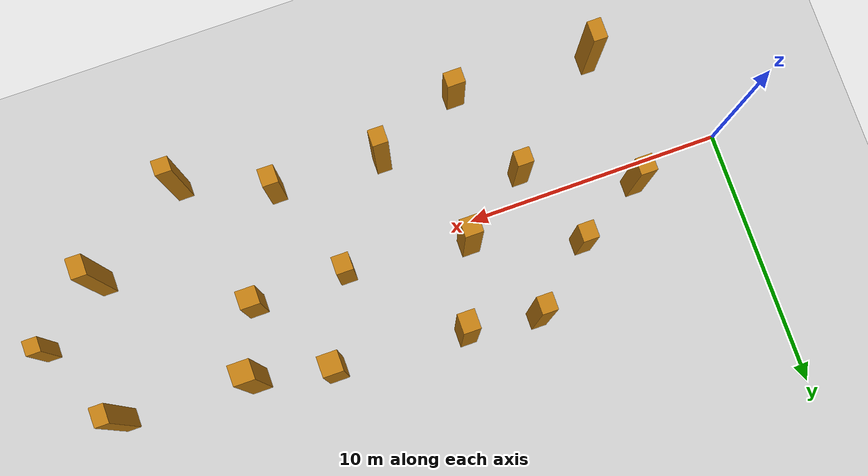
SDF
<sdf version="1.7">
 <world name="default">
  <light name="sun" type="directional">
   <pose>0 0 10 0 -0 0</pose>
   <diffuse>0.8 0.8 0.8 1</diffuse>
   <specular>0.2 0.2 0.2 1</specular>
   <attenuation>
    <range>1000</range>
    <constant>0.9</constant>
    <linear>0.01</linear>
    <quadratic>0.001</quadratic>
   </attenuation>
   <direction>-0.5 0.1 -0.9</direction>
   <spot><inner_angle>0</inner_angle><outer_angle>0</outer_angle><falloff>0</falloff></spot>
  </light>
  <model name="ground_plane">
   <static>1</static>
   <link name="link">
    <collision name="collision">
     <geometry><plane><normal>0 0 1</normal><size>100 100</size></plane></geometry>
     <surface>
      <contact><collide_bitmask>65535</collide_bitmask></contact>
      <friction><ode><mu>100</mu><mu2>50</mu2></ode></friction>
     </surface>
    </collision>
    <visual name="visual">
     <cast_shadows>0</cast_shadows>
     <geometry><plane><normal>0 0 1</normal><size>100 100</size></plane></geometry>
     <material>
      <script><uri>file://media/materials/scripts/gazebo.material</uri><name>Gazebo/Grey</name></script>
     </material>
    </visual>
   </link>
  </model>
  <gravity>0 0 -9.8</gravity>
  <magnetic_field>6e-06 2.3e-05 -4.2e-05</magnetic_field>
  <atmosphere type="adiabatic"/>
  <physics type="ode">
   <max_step_size>0.001</max_step_size>
   <real_time_factor>1</real_time_factor>
   <real_time_update_rate>1000</real_time_update_rate>
  </physics>
  <scene><ambient>0.4 0.4 0.4 1</ambient><background>0.7 0.7 0.7 1</background><shadows>1</shadows></scene>
  <spherical_coordinates>
   <surface_model>EARTH_WGS84</surface_model>
   <latitude_deg>0</latitude_deg>
   <longitude_deg>0</longitude_deg>
   <elevation>0</elevation>
   <heading_deg>0</heading_deg>
  </spherical_coordinates>
  <plugin name="gazebo_octomap" filename="libBuildOctomapPlugin.so"/>
  <model name="model0">
   <link name="link">
    <inertial>
     <mass>1</mass>
     <inertia>
      <ixx>0.166667</ixx>
      <ixy>0</ixy>
      <ixz>0</ixz>
      <iyy>0.166667</iyy>
      <iyz>0</iyz>
      <izz>0.166667</izz>
     </inertia>
    </inertial>
    <visual name="visual">
     <geometry><box><size>0.6402625426062548 0.7321620745551295 5.932854383173112</size></box></geometry>
     <material>
      <script><name>Gazebo/Grey</name><uri>file://media/materials/scripts/gazebo.material</uri></script>
      <shader type="pixel"><normal_map>__default__</normal_map></shader>
      <ambient>0.757 0.49 0.067 1</ambient>
      <diffuse>0.7 0.7 0.7 1</diffuse>
      <specular>0.01 0.01 0.01 1</specular>
      <emissive>0 0 0 1</emissive>
     </material>
    </visual>
    <collision name="collision">
     <geometry><box><size>0.6402625426062548 0.7321620745551295 5.932854383173112</size></box></geometry>
     <surface>
      <friction>
       <ode><mu>1</mu><mu2>1</mu2><fdir1>0 0 0</fdir1><slip1>0</slip1><slip2>0</slip2></ode>
       <torsional>
        <coefficient>1</coefficient>
        <patch_radius>0</patch_radius>
        <surface_radius>0</surface_radius>
        <use_patch_radius>1</use_patch_radius>
        <ode><slip>0</slip></ode>
       </torsional>
      </friction>
      <bounce><restitution_coefficient>0</restitution_coefficient><threshold>1e+06</threshold></bounce>
      <contact>
       <collide_without_contact>0</collide_without_contact>
       <collide_without_contact_bitmask>1</collide_without_contact_bitmask>
       <collide_bitmask>1</collide_bitmask>
       <ode>
        <soft_cfm>0</soft_cfm>
        <soft_erp>0.2</soft_erp>
        <kp>1e+13</kp>
        <kd>1</kd>
        <max_vel>0.01</max_vel>
        <min_depth>0</min_depth>
       </ode>
       <bullet>
        <split_impulse>1</split_impulse>
        <split_impulse_penetration_threshold>-0.01</split_impulse_penetration_threshold>
        <soft_cfm>0</soft_cfm>
        <soft_erp>0.2</soft_erp>
        <kp>1e+13</kp>
        <kd>1</kd>
       </bullet>
      </contact>
     </surface>
    </collision>
   </link>
   <static>0</static>
   <pose>11.662517056378999 4.077666107304665 2.966427191586556 0.0 0.0 0.0</pose>
  </model>
  <model name="model1">
   <link name="link">
    <inertial>
     <mass>1</mass>
     <inertia>
      <ixx>0.166667</ixx>
      <ixy>0</ixy>
      <ixz>0</ixz>
      <iyy>0.166667</iyy>
      <iyz>0</iyz>
      <izz>0.166667</izz>
     </inertia>
    </inertial>
    <visual name="visual">
     <geometry><box><size>0.7926041829274035 0.7601663109231412 5.770006397818017</size></box></geometry>
     <material>
      <script><name>Gazebo/Grey</name><uri>file://media/materials/scripts/gazebo.material</uri></script>
      <shader type="pixel"><normal_map>__default__</normal_map></shader>
      <ambient>0.757 0.49 0.067 1</ambient>
      <diffuse>0.7 0.7 0.7 1</diffuse>
      <specular>0.01 0.01 0.01 1</specular>
      <emissive>0 0 0 1</emissive>
     </material>
    </visual>
    <collision name="collision">
     <geometry><box><size>0.7926041829274035 0.7601663109231412 5.770006397818017</size></box></geometry>
     <surface>
      <friction>
       <ode><mu>1</mu><mu2>1</mu2><fdir1>0 0 0</fdir1><slip1>0</slip1><slip2>0</slip2></ode>
       <torsional>
        <coefficient>1</coefficient>
        <patch_radius>0</patch_radius>
        <surface_radius>0</surface_radius>
        <use_patch_radius>1</use_patch_radius>
        <ode><slip>0</slip></ode>
       </torsional>
      </friction>
      <bounce><restitution_coefficient>0</restitution_coefficient><threshold>1e+06</threshold></bounce>
      <contact>
       <collide_without_contact>0</collide_without_contact>
       <collide_without_contact_bitmask>1</collide_without_contact_bitmask>
       <collide_bitmask>1</collide_bitmask>
       <ode>
        <soft_cfm>0</soft_cfm>
        <soft_erp>0.2</soft_erp>
        <kp>1e+13</kp>
        <kd>1</kd>
        <max_vel>0.01</max_vel>
        <min_depth>0</min_depth>
       </ode>
       <bullet>
        <split_impulse>1</split_impulse>
        <split_impulse_penetration_threshold>-0.01</split_impulse_penetration_threshold>
        <soft_cfm>0</soft_cfm>
        <soft_erp>0.2</soft_erp>
        <kp>1e+13</kp>
        <kd>1</kd>
       </bullet>
      </contact>
     </surface>
    </collision>
   </link>
   <static>0</static>
   <pose>19.596530235896566 3.118956362524763 2.8850031989090086 0.0 0.0 0.0</pose>
  </model>
  <model name="model2">
   <link name="link">
    <inertial>
     <mass>1</mass>
     <inertia>
      <ixx>0.166667</ixx>
      <ixy>0</ixy>
      <ixz>0</ixz>
      <iyy>0.166667</iyy>
      <iyz>0</iyz>
      <izz>0.166667</izz>
     </inertia>
    </inertial>
    <visual name="visual">
     <geometry><box><size>0.7585043041476112 0.6993387628271526 3.2267401947062844</size></box></geometry>
     <material>
      <script><name>Gazebo/Grey</name><uri>file://media/materials/scripts/gazebo.material</uri></script>
      <shader type="pixel"><normal_map>__default__</normal_map></shader>
      <ambient>0.757 0.49 0.067 1</ambient>
      <diffuse>0.7 0.7 0.7 1</diffuse>
      <specular>0.01 0.01 0.01 1</specular>
      <emissive>0 0 0 1</emissive>
     </material>
    </visual>
    <collision name="collision">
     <geometry><box><size>0.7585043041476112 0.6993387628271526 3.2267401947062844</size></box></geometry>
     <surface>
      <friction>
       <ode><mu>1</mu><mu2>1</mu2><fdir1>0 0 0</fdir1><slip1>0</slip1><slip2>0</slip2></ode>
       <torsional>
        <coefficient>1</coefficient>
        <patch_radius>0</patch_radius>
        <surface_radius>0</surface_radius>
        <use_patch_radius>1</use_patch_radius>
        <ode><slip>0</slip></ode>
       </torsional>
      </friction>
      <bounce><restitution_coefficient>0</restitution_coefficient><threshold>1e+06</threshold></bounce>
      <contact>
       <collide_without_contact>0</collide_without_contact>
       <collide_without_contact_bitmask>1</collide_without_contact_bitmask>
       <collide_bitmask>1</collide_bitmask>
       <ode>
        <soft_cfm>0</soft_cfm>
        <soft_erp>0.2</soft_erp>
        <kp>1e+13</kp>
        <kd>1</kd>
        <max_vel>0.01</max_vel>
        <min_depth>0</min_depth>
       </ode>
       <bullet>
        <split_impulse>1</split_impulse>
        <split_impulse_penetration_threshold>-0.01</split_impulse_penetration_threshold>
        <soft_cfm>0</soft_cfm>
        <soft_erp>0.2</soft_erp>
        <kp>1e+13</kp>
        <kd>1</kd>
       </bullet>
      </contact>
     </surface>
    </collision>
   </link>
   <static>0</static>
   <pose>18.795943505186177 0.3847671600215188 1.6133700973531422 0.0 0.0 0.0</pose>
  </model>
  <model name="model3">
   <link name="link">
    <inertial>
     <mass>1</mass>
     <inertia>
      <ixx>0.166667</ixx>
      <ixy>0</ixy>
      <ixz>0</ixz>
      <iyy>0.166667</iyy>
      <iyz>0</iyz>
      <izz>0.166667</izz>
     </inertia>
    </inertial>
    <visual name="visual">
     <geometry><box><size>0.6168773900200244 0.6721016739439598 3.523141033162217</size></box></geometry>
     <material>
      <script><name>Gazebo/Grey</name><uri>file://media/materials/scripts/gazebo.material</uri></script>
      <shader type="pixel"><normal_map>__default__</normal_map></shader>
      <ambient>0.757 0.49 0.067 1</ambient>
      <diffuse>0.7 0.7 0.7 1</diffuse>
      <specular>0.01 0.01 0.01 1</specular>
      <emissive>0 0 0 1</emissive>
     </material>
    </visual>
    <collision name="collision">
     <geometry><box><size>0.6168773900200244 0.6721016739439598 3.523141033162217</size></box></geometry>
     <surface>
      <friction>
       <ode><mu>1</mu><mu2>1</mu2><fdir1>0 0 0</fdir1><slip1>0</slip1><slip2>0</slip2></ode>
       <torsional>
        <coefficient>1</coefficient>
        <patch_radius>0</patch_radius>
        <surface_radius>0</surface_radius>
        <use_patch_radius>1</use_patch_radius>
        <ode><slip>0</slip></ode>
       </torsional>
      </friction>
      <bounce><restitution_coefficient>0</restitution_coefficient><threshold>1e+06</threshold></bounce>
      <contact>
       <collide_without_contact>0</collide_without_contact>
       <collide_without_contact_bitmask>1</collide_without_contact_bitmask>
       <collide_bitmask>1</collide_bitmask>
       <ode>
        <soft_cfm>0</soft_cfm>
        <soft_erp>0.2</soft_erp>
        <kp>1e+13</kp>
        <kd>1</kd>
        <max_vel>0.01</max_vel>
        <min_depth>0</min_depth>
       </ode>
       <bullet>
        <split_impulse>1</split_impulse>
        <split_impulse_penetration_threshold>-0.01</split_impulse_penetration_threshold>
        <soft_cfm>0</soft_cfm>
        <soft_erp>0.2</soft_erp>
        <kp>1e+13</kp>
        <kd>1</kd>
       </bullet>
      </contact>
     </surface>
    </collision>
   </link>
   <static>0</static>
   <pose>6.351225697917822 2.2384086742602625 1.7615705165811084 0.0 0.0 0.0</pose>
  </model>
  <model name="model4">
   <link name="link">
    <inertial>
     <mass>1</mass>
     <inertia>
      <ixx>0.166667</ixx>
      <ixy>0</ixy>
      <ixz>0</ixz>
      <iyy>0.166667</iyy>
      <iyz>0</iyz>
      <izz>0.166667</izz>
     </inertia>
    </inertial>
    <visual name="visual">
     <geometry><box><size>0.5875072831207581 0.6268048547813048 5.116063850576148</size></box></geometry>
     <material>
      <script><name>Gazebo/Grey</name><uri>file://media/materials/scripts/gazebo.material</uri></script>
      <shader type="pixel"><normal_map>__default__</normal_map></shader>
      <ambient>0.757 0.49 0.067 1</ambient>
      <diffuse>0.7 0.7 0.7 1</diffuse>
      <specular>0.01 0.01 0.01 1</specular>
      <emissive>0 0 0 1</emissive>
     </material>
    </visual>
    <collision name="collision">
     <geometry><box><size>0.5875072831207581 0.6268048547813048 5.116063850576148</size></box></geometry>
     <surface>
      <friction>
       <ode><mu>1</mu><mu2>1</mu2><fdir1>0 0 0</fdir1><slip1>0</slip1><slip2>0</slip2></ode>
       <torsional>
        <coefficient>1</coefficient>
        <patch_radius>0</patch_radius>
        <surface_radius>0</surface_radius>
        <use_patch_radius>1</use_patch_radius>
        <ode><slip>0</slip></ode>
       </torsional>
      </friction>
      <bounce><restitution_coefficient>0</restitution_coefficient><threshold>1e+06</threshold></bounce>
      <contact>
       <collide_without_contact>0</collide_without_contact>
       <collide_without_contact_bitmask>1</collide_without_contact_bitmask>
       <collide_bitmask>1</collide_bitmask>
       <ode>
        <soft_cfm>0</soft_cfm>
        <soft_erp>0.2</soft_erp>
        <kp>1e+13</kp>
        <kd>1</kd>
        <max_vel>0.01</max_vel>
        <min_depth>0</min_depth>
       </ode>
       <bullet>
        <split_impulse>1</split_impulse>
        <split_impulse_penetration_threshold>-0.01</split_impulse_penetration_threshold>
        <soft_cfm>0</soft_cfm>
        <soft_erp>0.2</soft_erp>
        <kp>1e+13</kp>
        <kd>1</kd>
       </bullet>
      </contact>
     </surface>
    </collision>
   </link>
   <static>0</static>
   <pose>12.468142239162923 -3.2642082276868445 2.558031925288074 0.0 0.0 0.0</pose>
  </model>
  <model name="model5">
   <link name="link">
    <inertial>
     <mass>1</mass>
     <inertia>
      <ixx>0.166667</ixx>
      <ixy>0</ixy>
      <ixz>0</ixz>
      <iyy>0.166667</iyy>
      <iyz>0</iyz>
      <izz>0.166667</izz>
     </inertia>
    </inertial>
    <visual name="visual">
     <geometry><box><size>0.6562938639500012 0.6783752463258594 3.314398212564381</size></box></geometry>
     <material>
      <script><name>Gazebo/Grey</name><uri>file://media/materials/scripts/gazebo.material</uri></script>
      <shader type="pixel"><normal_map>__default__</normal_map></shader>
      <ambient>0.757 0.49 0.067 1</ambient>
      <diffuse>0.7 0.7 0.7 1</diffuse>
      <specular>0.01 0.01 0.01 1</specular>
      <emissive>0 0 0 1</emissive>
     </material>
    </visual>
    <collision name="collision">
     <geometry><box><size>0.6562938639500012 0.6783752463258594 3.314398212564381</size></box></geometry>
     <surface>
      <friction>
       <ode><mu>1</mu><mu2>1</mu2><fdir1>0 0 0</fdir1><slip1>0</slip1><slip2>0</slip2></ode>
       <torsional>
        <coefficient>1</coefficient>
        <patch_radius>0</patch_radius>
        <surface_radius>0</surface_radius>
        <use_patch_radius>1</use_patch_radius>
        <ode><slip>0</slip></ode>
       </torsional>
      </friction>
      <bounce><restitution_coefficient>0</restitution_coefficient><threshold>1e+06</threshold></bounce>
      <contact>
       <collide_without_contact>0</collide_without_contact>
       <collide_without_contact_bitmask>1</collide_without_contact_bitmask>
       <collide_bitmask>1</collide_bitmask>
       <ode>
        <soft_cfm>0</soft_cfm>
        <soft_erp>0.2</soft_erp>
        <kp>1e+13</kp>
        <kd>1</kd>
        <max_vel>0.01</max_vel>
        <min_depth>0</min_depth>
       </ode>
       <bullet>
        <split_impulse>1</split_impulse>
        <split_impulse_penetration_threshold>-0.01</split_impulse_penetration_threshold>
        <soft_cfm>0</soft_cfm>
        <soft_erp>0.2</soft_erp>
        <kp>1e+13</kp>
        <kd>1</kd>
       </bullet>
      </contact>
     </surface>
    </collision>
   </link>
   <static>0</static>
   <pose>15.158822422582917 0.3528990592626613 1.6571991062821905 0.0 0.0 0.0</pose>
  </model>
  <model name="model6">
   <link name="link">
    <inertial>
     <mass>1</mass>
     <inertia>
      <ixx>0.166667</ixx>
      <ixy>0</ixy>
      <ixz>0</ixz>
      <iyy>0.166667</iyy>
      <iyz>0</iyz>
      <izz>0.166667</izz>
     </inertia>
    </inertial>
    <visual name="visual">
     <geometry><box><size>0.6927449384870178 0.6814920330369663 5.105653404831353</size></box></geometry>
     <material>
      <script><name>Gazebo/Grey</name><uri>file://media/materials/scripts/gazebo.material</uri></script>
      <shader type="pixel"><normal_map>__default__</normal_map></shader>
      <ambient>0.757 0.49 0.067 1</ambient>
      <diffuse>0.7 0.7 0.7 1</diffuse>
      <specular>0.01 0.01 0.01 1</specular>
      <emissive>0 0 0 1</emissive>
     </material>
    </visual>
    <collision name="collision">
     <geometry><box><size>0.6927449384870178 0.6814920330369663 5.105653404831353</size></box></geometry>
     <surface>
      <friction>
       <ode><mu>1</mu><mu2>1</mu2><fdir1>0 0 0</fdir1><slip1>0</slip1><slip2>0</slip2></ode>
       <torsional>
        <coefficient>1</coefficient>
        <patch_radius>0</patch_radius>
        <surface_radius>0</surface_radius>
        <use_patch_radius>1</use_patch_radius>
        <ode><slip>0</slip></ode>
       </torsional>
      </friction>
      <bounce><restitution_coefficient>0</restitution_coefficient><threshold>1e+06</threshold></bounce>
      <contact>
       <collide_without_contact>0</collide_without_contact>
       <collide_without_contact_bitmask>1</collide_without_contact_bitmask>
       <collide_bitmask>1</collide_bitmask>
       <ode>
        <soft_cfm>0</soft_cfm>
        <soft_erp>0.2</soft_erp>
        <kp>1e+13</kp>
        <kd>1</kd>
        <max_vel>0.01</max_vel>
        <min_depth>0</min_depth>
       </ode>
       <bullet>
        <split_impulse>1</split_impulse>
        <split_impulse_penetration_threshold>-0.01</split_impulse_penetration_threshold>
        <soft_cfm>0</soft_cfm>
        <soft_erp>0.2</soft_erp>
        <kp>1e+13</kp>
        <kd>1</kd>
       </bullet>
      </contact>
     </surface>
    </collision>
   </link>
   <static>0</static>
   <pose>10.406460404937729 0.8645016786296651 2.5528267024156763 0.0 0.0 0.0</pose>
  </model>
  <model name="model7">
   <link name="link">
    <inertial>
     <mass>1</mass>
     <inertia>
      <ixx>0.166667</ixx>
      <ixy>0</ixy>
      <ixz>0</ixz>
      <iyy>0.166667</iyy>
      <iyz>0</iyz>
      <izz>0.166667</izz>
     </inertia>
    </inertial>
    <visual name="visual">
     <geometry><box><size>0.5847253934455834 0.7794530934289549 5.246730457987969</size></box></geometry>
     <material>
      <script><name>Gazebo/Grey</name><uri>file://media/materials/scripts/gazebo.material</uri></script>
      <shader type="pixel"><normal_map>__default__</normal_map></shader>
      <ambient>0.757 0.49 0.067 1</ambient>
      <diffuse>0.7 0.7 0.7 1</diffuse>
      <specular>0.01 0.01 0.01 1</specular>
      <emissive>0 0 0 1</emissive>
     </material>
    </visual>
    <collision name="collision">
     <geometry><box><size>0.5847253934455834 0.7794530934289549 5.246730457987969</size></box></geometry>
     <surface>
      <friction>
       <ode><mu>1</mu><mu2>1</mu2><fdir1>0 0 0</fdir1><slip1>0</slip1><slip2>0</slip2></ode>
       <torsional>
        <coefficient>1</coefficient>
        <patch_radius>0</patch_radius>
        <surface_radius>0</surface_radius>
        <use_patch_radius>1</use_patch_radius>
        <ode><slip>0</slip></ode>
       </torsional>
      </friction>
      <bounce><restitution_coefficient>0</restitution_coefficient><threshold>1e+06</threshold></bounce>
      <contact>
       <collide_without_contact>0</collide_without_contact>
       <collide_without_contact_bitmask>1</collide_without_contact_bitmask>
       <collide_bitmask>1</collide_bitmask>
       <ode>
        <soft_cfm>0</soft_cfm>
        <soft_erp>0.2</soft_erp>
        <kp>1e+13</kp>
        <kd>1</kd>
        <max_vel>0.01</max_vel>
        <min_depth>0</min_depth>
       </ode>
       <bullet>
        <split_impulse>1</split_impulse>
        <split_impulse_penetration_threshold>-0.01</split_impulse_penetration_threshold>
        <soft_cfm>0</soft_cfm>
        <soft_erp>0.2</soft_erp>
        <kp>1e+13</kp>
        <kd>1</kd>
       </bullet>
      </contact>
     </surface>
    </collision>
   </link>
   <static>0</static>
   <pose>23.93201211782333 -2.3444732014074985 2.6233652289939844 0.0 0.0 0.0</pose>
  </model>
  <model name="model8">
   <link name="link">
    <inertial>
     <mass>1</mass>
     <inertia>
      <ixx>0.166667</ixx>
      <ixy>0</ixy>
      <ixz>0</ixz>
      <iyy>0.166667</iyy>
      <iyz>0</iyz>
      <izz>0.166667</izz>
     </inertia>
    </inertial>
    <visual name="visual">
     <geometry><box><size>0.5371616395851441 0.7303803672669974 5.682764004160392</size></box></geometry>
     <material>
      <script><name>Gazebo/Grey</name><uri>file://media/materials/scripts/gazebo.material</uri></script>
      <shader type="pixel"><normal_map>__default__</normal_map></shader>
      <ambient>0.757 0.49 0.067 1</ambient>
      <diffuse>0.7 0.7 0.7 1</diffuse>
      <specular>0.01 0.01 0.01 1</specular>
      <emissive>0 0 0 1</emissive>
     </material>
    </visual>
    <collision name="collision">
     <geometry><box><size>0.5371616395851441 0.7303803672669974 5.682764004160392</size></box></geometry>
     <surface>
      <friction>
       <ode><mu>1</mu><mu2>1</mu2><fdir1>0 0 0</fdir1><slip1>0</slip1><slip2>0</slip2></ode>
       <torsional>
        <coefficient>1</coefficient>
        <patch_radius>0</patch_radius>
        <surface_radius>0</surface_radius>
        <use_patch_radius>1</use_patch_radius>
        <ode><slip>0</slip></ode>
       </torsional>
      </friction>
      <bounce><restitution_coefficient>0</restitution_coefficient><threshold>1e+06</threshold></bounce>
      <contact>
       <collide_without_contact>0</collide_without_contact>
       <collide_without_contact_bitmask>1</collide_without_contact_bitmask>
       <collide_bitmask>1</collide_bitmask>
       <ode>
        <soft_cfm>0</soft_cfm>
        <soft_erp>0.2</soft_erp>
        <kp>1e+13</kp>
        <kd>1</kd>
        <max_vel>0.01</max_vel>
        <min_depth>0</min_depth>
       </ode>
       <bullet>
        <split_impulse>1</split_impulse>
        <split_impulse_penetration_threshold>-0.01</split_impulse_penetration_threshold>
        <soft_cfm>0</soft_cfm>
        <soft_erp>0.2</soft_erp>
        <kp>1e+13</kp>
        <kd>1</kd>
       </bullet>
      </contact>
     </surface>
    </collision>
   </link>
   <static>0</static>
   <pose>24.633394607752265 2.8876006394186486 2.841382002080196 0.0 0.0 0.0</pose>
  </model>
  <model name="model9">
   <link name="link">
    <inertial>
     <mass>1</mass>
     <inertia>
      <ixx>0.166667</ixx>
      <ixy>0</ixy>
      <ixz>0</ixz>
      <iyy>0.166667</iyy>
      <iyz>0</iyz>
      <izz>0.166667</izz>
     </inertia>
    </inertial>
    <visual name="visual">
     <geometry><box><size>0.5362729402075688 0.7793585854390719 4.730451336690147</size></box></geometry>
     <material>
      <script><name>Gazebo/Grey</name><uri>file://media/materials/scripts/gazebo.material</uri></script>
      <shader type="pixel"><normal_map>__default__</normal_map></shader>
      <ambient>0.757 0.49 0.067 1</ambient>
      <diffuse>0.7 0.7 0.7 1</diffuse>
      <specular>0.01 0.01 0.01 1</specular>
      <emissive>0 0 0 1</emissive>
     </material>
    </visual>
    <collision name="collision">
     <geometry><box><size>0.5362729402075688 0.7793585854390719 4.730451336690147</size></box></geometry>
     <surface>
      <friction>
       <ode><mu>1</mu><mu2>1</mu2><fdir1>0 0 0</fdir1><slip1>0</slip1><slip2>0</slip2></ode>
       <torsional>
        <coefficient>1</coefficient>
        <patch_radius>0</patch_radius>
        <surface_radius>0</surface_radius>
        <use_patch_radius>1</use_patch_radius>
        <ode><slip>0</slip></ode>
       </torsional>
      </friction>
      <bounce><restitution_coefficient>0</restitution_coefficient><threshold>1e+06</threshold></bounce>
      <contact>
       <collide_without_contact>0</collide_without_contact>
       <collide_without_contact_bitmask>1</collide_without_contact_bitmask>
       <collide_bitmask>1</collide_bitmask>
       <ode>
        <soft_cfm>0</soft_cfm>
        <soft_erp>0.2</soft_erp>
        <kp>1e+13</kp>
        <kd>1</kd>
        <max_vel>0.01</max_vel>
        <min_depth>0</min_depth>
       </ode>
       <bullet>
        <split_impulse>1</split_impulse>
        <split_impulse_penetration_threshold>-0.01</split_impulse_penetration_threshold>
        <soft_cfm>0</soft_cfm>
        <soft_erp>0.2</soft_erp>
        <kp>1e+13</kp>
        <kd>1</kd>
       </bullet>
      </contact>
     </surface>
    </collision>
   </link>
   <static>0</static>
   <pose>3.676466055561165 -4.422922684630166 2.3652256683450736 0.0 0.0 0.0</pose>
  </model>
  <model name="model10">
   <link name="link">
    <inertial>
     <mass>1</mass>
     <inertia>
      <ixx>0.166667</ixx>
      <ixy>0</ixy>
      <ixz>0</ixz>
      <iyy>0.166667</iyy>
      <iyz>0</iyz>
      <izz>0.166667</izz>
     </inertia>
    </inertial>
    <visual name="visual">
     <geometry><box><size>0.7823423738383494 0.7926872000435455 4.05426290898098</size></box></geometry>
     <material>
      <script><name>Gazebo/Grey</name><uri>file://media/materials/scripts/gazebo.material</uri></script>
      <shader type="pixel"><normal_map>__default__</normal_map></shader>
      <ambient>0.757 0.49 0.067 1</ambient>
      <diffuse>0.7 0.7 0.7 1</diffuse>
      <specular>0.01 0.01 0.01 1</specular>
      <emissive>0 0 0 1</emissive>
     </material>
    </visual>
    <collision name="collision">
     <geometry><box><size>0.7823423738383494 0.7926872000435455 4.05426290898098</size></box></geometry>
     <surface>
      <friction>
       <ode><mu>1</mu><mu2>1</mu2><fdir1>0 0 0</fdir1><slip1>0</slip1><slip2>0</slip2></ode>
       <torsional>
        <coefficient>1</coefficient>
        <patch_radius>0</patch_radius>
        <surface_radius>0</surface_radius>
        <use_patch_radius>1</use_patch_radius>
        <ode><slip>0</slip></ode>
       </torsional>
      </friction>
      <bounce><restitution_coefficient>0</restitution_coefficient><threshold>1e+06</threshold></bounce>
      <contact>
       <collide_without_contact>0</collide_without_contact>
       <collide_without_contact_bitmask>1</collide_without_contact_bitmask>
       <collide_bitmask>1</collide_bitmask>
       <ode>
        <soft_cfm>0</soft_cfm>
        <soft_erp>0.2</soft_erp>
        <kp>1e+13</kp>
        <kd>1</kd>
        <max_vel>0.01</max_vel>
        <min_depth>0</min_depth>
       </ode>
       <bullet>
        <split_impulse>1</split_impulse>
        <split_impulse_penetration_threshold>-0.01</split_impulse_penetration_threshold>
        <soft_cfm>0</soft_cfm>
        <soft_erp>0.2</soft_erp>
        <kp>1e+13</kp>
        <kd>1</kd>
       </bullet>
      </contact>
     </surface>
    </collision>
   </link>
   <static>0</static>
   <pose>16.7121722548348 3.7067584188214795 2.02713145449049 0.0 0.0 0.0</pose>
  </model>
  <model name="model11">
   <link name="link">
    <inertial>
     <mass>1</mass>
     <inertia>
      <ixx>0.166667</ixx>
      <ixy>0</ixy>
      <ixz>0</ixz>
      <iyy>0.166667</iyy>
      <iyz>0</iyz>
      <izz>0.166667</izz>
     </inertia>
    </inertial>
    <visual name="visual">
     <geometry><box><size>0.6126621259063181 0.6846873812230798 3.7191273164094696</size></box></geometry>
     <material>
      <script><name>Gazebo/Grey</name><uri>file://media/materials/scripts/gazebo.material</uri></script>
      <shader type="pixel"><normal_map>__default__</normal_map></shader>
      <ambient>0.757 0.49 0.067 1</ambient>
      <diffuse>0.7 0.7 0.7 1</diffuse>
      <specular>0.01 0.01 0.01 1</specular>
      <emissive>0 0 0 1</emissive>
     </material>
    </visual>
    <collision name="collision">
     <geometry><box><size>0.6126621259063181 0.6846873812230798 3.7191273164094696</size></box></geometry>
     <surface>
      <friction>
       <ode><mu>1</mu><mu2>1</mu2><fdir1>0 0 0</fdir1><slip1>0</slip1><slip2>0</slip2></ode>
       <torsional>
        <coefficient>1</coefficient>
        <patch_radius>0</patch_radius>
        <surface_radius>0</surface_radius>
        <use_patch_radius>1</use_patch_radius>
        <ode><slip>0</slip></ode>
       </torsional>
      </friction>
      <bounce><restitution_coefficient>0</restitution_coefficient><threshold>1e+06</threshold></bounce>
      <contact>
       <collide_without_contact>0</collide_without_contact>
       <collide_without_contact_bitmask>1</collide_without_contact_bitmask>
       <collide_bitmask>1</collide_bitmask>
       <ode>
        <soft_cfm>0</soft_cfm>
        <soft_erp>0.2</soft_erp>
        <kp>1e+13</kp>
        <kd>1</kd>
        <max_vel>0.01</max_vel>
        <min_depth>0</min_depth>
       </ode>
       <bullet>
        <split_impulse>1</split_impulse>
        <split_impulse_penetration_threshold>-0.01</split_impulse_penetration_threshold>
        <soft_cfm>0</soft_cfm>
        <soft_erp>0.2</soft_erp>
        <kp>1e+13</kp>
        <kd>1</kd>
       </bullet>
      </contact>
     </surface>
    </collision>
   </link>
   <static>0</static>
   <pose>16.665769919873803 -3.5141307785986573 1.8595636582047348 0.0 0.0 0.0</pose>
  </model>
  <model name="model12">
   <link name="link">
    <inertial>
     <mass>1</mass>
     <inertia>
      <ixx>0.166667</ixx>
      <ixy>0</ixy>
      <ixz>0</ixz>
      <iyy>0.166667</iyy>
      <iyz>0</iyz>
      <izz>0.166667</izz>
     </inertia>
    </inertial>
    <visual name="visual">
     <geometry><box><size>0.6181210889957015 0.577548150909448 4.094761555639733</size></box></geometry>
     <material>
      <script><name>Gazebo/Grey</name><uri>file://media/materials/scripts/gazebo.material</uri></script>
      <shader type="pixel"><normal_map>__default__</normal_map></shader>
      <ambient>0.757 0.49 0.067 1</ambient>
      <diffuse>0.7 0.7 0.7 1</diffuse>
      <specular>0.01 0.01 0.01 1</specular>
      <emissive>0 0 0 1</emissive>
     </material>
    </visual>
    <collision name="collision">
     <geometry><box><size>0.6181210889957015 0.577548150909448 4.094761555639733</size></box></geometry>
     <surface>
      <friction>
       <ode><mu>1</mu><mu2>1</mu2><fdir1>0 0 0</fdir1><slip1>0</slip1><slip2>0</slip2></ode>
       <torsional>
        <coefficient>1</coefficient>
        <patch_radius>0</patch_radius>
        <surface_radius>0</surface_radius>
        <use_patch_radius>1</use_patch_radius>
        <ode><slip>0</slip></ode>
       </torsional>
      </friction>
      <bounce><restitution_coefficient>0</restitution_coefficient><threshold>1e+06</threshold></bounce>
      <contact>
       <collide_without_contact>0</collide_without_contact>
       <collide_without_contact_bitmask>1</collide_without_contact_bitmask>
       <collide_bitmask>1</collide_bitmask>
       <ode>
        <soft_cfm>0</soft_cfm>
        <soft_erp>0.2</soft_erp>
        <kp>1e+13</kp>
        <kd>1</kd>
        <max_vel>0.01</max_vel>
        <min_depth>0</min_depth>
       </ode>
       <bullet>
        <split_impulse>1</split_impulse>
        <split_impulse_penetration_threshold>-0.01</split_impulse_penetration_threshold>
        <soft_cfm>0</soft_cfm>
        <soft_erp>0.2</soft_erp>
        <kp>1e+13</kp>
        <kd>1</kd>
       </bullet>
      </contact>
     </surface>
    </collision>
   </link>
   <static>0</static>
   <pose>7.708660866850703 -1.0246128022991519 2.0473807778198667 0.0 0.0 0.0</pose>
  </model>
  <model name="model13">
   <link name="link">
    <inertial>
     <mass>1</mass>
     <inertia>
      <ixx>0.166667</ixx>
      <ixy>0</ixy>
      <ixz>0</ixz>
      <iyy>0.166667</iyy>
      <iyz>0</iyz>
      <izz>0.166667</izz>
     </inertia>
    </inertial>
    <visual name="visual">
     <geometry><box><size>0.7023438280527752 0.5677585026651882 3.5393640264685122</size></box></geometry>
     <material>
      <script><name>Gazebo/Grey</name><uri>file://media/materials/scripts/gazebo.material</uri></script>
      <shader type="pixel"><normal_map>__default__</normal_map></shader>
      <ambient>0.757 0.49 0.067 1</ambient>
      <diffuse>0.7 0.7 0.7 1</diffuse>
      <specular>0.01 0.01 0.01 1</specular>
      <emissive>0 0 0 1</emissive>
     </material>
    </visual>
    <collision name="collision">
     <geometry><box><size>0.7023438280527752 0.5677585026651882 3.5393640264685122</size></box></geometry>
     <surface>
      <friction>
       <ode><mu>1</mu><mu2>1</mu2><fdir1>0 0 0</fdir1><slip1>0</slip1><slip2>0</slip2></ode>
       <torsional>
        <coefficient>1</coefficient>
        <patch_radius>0</patch_radius>
        <surface_radius>0</surface_radius>
        <use_patch_radius>1</use_patch_radius>
        <ode><slip>0</slip></ode>
       </torsional>
      </friction>
      <bounce><restitution_coefficient>0</restitution_coefficient><threshold>1e+06</threshold></bounce>
      <contact>
       <collide_without_contact>0</collide_without_contact>
       <collide_without_contact_bitmask>1</collide_without_contact_bitmask>
       <collide_bitmask>1</collide_bitmask>
       <ode>
        <soft_cfm>0</soft_cfm>
        <soft_erp>0.2</soft_erp>
        <kp>1e+13</kp>
        <kd>1</kd>
        <max_vel>0.01</max_vel>
        <min_depth>0</min_depth>
       </ode>
       <bullet>
        <split_impulse>1</split_impulse>
        <split_impulse_penetration_threshold>-0.01</split_impulse_penetration_threshold>
        <soft_cfm>0</soft_cfm>
        <soft_erp>0.2</soft_erp>
        <kp>1e+13</kp>
        <kd>1</kd>
       </bullet>
      </contact>
     </surface>
    </collision>
   </link>
   <static>0</static>
   <pose>9.0343791434321 -4.7561616402727305 1.7696820132342561 0.0 0.0 0.0</pose>
  </model>
  <model name="model14">
   <link name="link">
    <inertial>
     <mass>1</mass>
     <inertia>
      <ixx>0.166667</ixx>
      <ixy>0</ixy>
      <ixz>0</ixz>
      <iyy>0.166667</iyy>
      <iyz>0</iyz>
      <izz>0.166667</izz>
     </inertia>
    </inertial>
    <visual name="visual">
     <geometry><box><size>0.5852381799339296 0.6519488043724533 5.893324750882033</size></box></geometry>
     <material>
      <script><name>Gazebo/Grey</name><uri>file://media/materials/scripts/gazebo.material</uri></script>
      <shader type="pixel"><normal_map>__default__</normal_map></shader>
      <ambient>0.757 0.49 0.067 1</ambient>
      <diffuse>0.7 0.7 0.7 1</diffuse>
      <specular>0.01 0.01 0.01 1</specular>
      <emissive>0 0 0 1</emissive>
     </material>
    </visual>
    <collision name="collision">
     <geometry><box><size>0.5852381799339296 0.6519488043724533 5.893324750882033</size></box></geometry>
     <surface>
      <friction>
       <ode><mu>1</mu><mu2>1</mu2><fdir1>0 0 0</fdir1><slip1>0</slip1><slip2>0</slip2></ode>
       <torsional>
        <coefficient>1</coefficient>
        <patch_radius>0</patch_radius>
        <surface_radius>0</surface_radius>
        <use_patch_radius>1</use_patch_radius>
        <ode><slip>0</slip></ode>
       </torsional>
      </friction>
      <bounce><restitution_coefficient>0</restitution_coefficient><threshold>1e+06</threshold></bounce>
      <contact>
       <collide_without_contact>0</collide_without_contact>
       <collide_without_contact_bitmask>1</collide_without_contact_bitmask>
       <collide_bitmask>1</collide_bitmask>
       <ode>
        <soft_cfm>0</soft_cfm>
        <soft_erp>0.2</soft_erp>
        <kp>1e+13</kp>
        <kd>1</kd>
        <max_vel>0.01</max_vel>
        <min_depth>0</min_depth>
       </ode>
       <bullet>
        <split_impulse>1</split_impulse>
        <split_impulse_penetration_threshold>-0.01</split_impulse_penetration_threshold>
        <soft_cfm>0</soft_cfm>
        <soft_erp>0.2</soft_erp>
        <kp>1e+13</kp>
        <kd>1</kd>
       </bullet>
      </contact>
     </surface>
    </collision>
   </link>
   <static>0</static>
   <pose>8.917902780023793 4.3843858784155145 2.9466623754410164 0.0 0.0 0.0</pose>
  </model>
  <model name="model15">
   <link name="link">
    <inertial>
     <mass>1</mass>
     <inertia>
      <ixx>0.166667</ixx>
      <ixy>0</ixy>
      <ixz>0</ixz>
      <iyy>0.166667</iyy>
      <iyz>0</iyz>
      <izz>0.166667</izz>
     </inertia>
    </inertial>
    <visual name="visual">
     <geometry><box><size>0.638192749907345 0.6424591154243688 4.456402972718189</size></box></geometry>
     <material>
      <script><name>Gazebo/Grey</name><uri>file://media/materials/scripts/gazebo.material</uri></script>
      <shader type="pixel"><normal_map>__default__</normal_map></shader>
      <ambient>0.757 0.49 0.067 1</ambient>
      <diffuse>0.7 0.7 0.7 1</diffuse>
      <specular>0.01 0.01 0.01 1</specular>
      <emissive>0 0 0 1</emissive>
     </material>
    </visual>
    <collision name="collision">
     <geometry><box><size>0.638192749907345 0.6424591154243688 4.456402972718189</size></box></geometry>
     <surface>
      <friction>
       <ode><mu>1</mu><mu2>1</mu2><fdir1>0 0 0</fdir1><slip1>0</slip1><slip2>0</slip2></ode>
       <torsional>
        <coefficient>1</coefficient>
        <patch_radius>0</patch_radius>
        <surface_radius>0</surface_radius>
        <use_patch_radius>1</use_patch_radius>
        <ode><slip>0</slip></ode>
       </torsional>
      </friction>
      <bounce><restitution_coefficient>0</restitution_coefficient><threshold>1e+06</threshold></bounce>
      <contact>
       <collide_without_contact>0</collide_without_contact>
       <collide_without_contact_bitmask>1</collide_without_contact_bitmask>
       <collide_bitmask>1</collide_bitmask>
       <ode>
        <soft_cfm>0</soft_cfm>
        <soft_erp>0.2</soft_erp>
        <kp>1e+13</kp>
        <kd>1</kd>
        <max_vel>0.01</max_vel>
        <min_depth>0</min_depth>
       </ode>
       <bullet>
        <split_impulse>1</split_impulse>
        <split_impulse_penetration_threshold>-0.01</split_impulse_penetration_threshold>
        <soft_cfm>0</soft_cfm>
        <soft_erp>0.2</soft_erp>
        <kp>1e+13</kp>
        <kd>1</kd>
       </bullet>
      </contact>
     </surface>
    </collision>
   </link>
   <static>0</static>
   <pose>3.6912198940110557 0.7659647615188021 2.2282014863590947 0.0 0.0 0.0</pose>
  </model>
  <model name="model16">
   <link name="link">
    <inertial>
     <mass>1</mass>
     <inertia>
      <ixx>0.166667</ixx>
      <ixy>0</ixy>
      <ixz>0</ixz>
      <iyy>0.166667</iyy>
      <iyz>0</iyz>
      <izz>0.166667</izz>
     </inertia>
    </inertial>
    <visual name="visual">
     <geometry><box><size>0.615941966763328 0.5542718001350472 5.121998130910264</size></box></geometry>
     <material>
      <script><name>Gazebo/Grey</name><uri>file://media/materials/scripts/gazebo.material</uri></script>
      <shader type="pixel"><normal_map>__default__</normal_map></shader>
      <ambient>0.757 0.49 0.067 1</ambient>
      <diffuse>0.7 0.7 0.7 1</diffuse>
      <specular>0.01 0.01 0.01 1</specular>
      <emissive>0 0 0 1</emissive>
     </material>
    </visual>
    <collision name="collision">
     <geometry><box><size>0.615941966763328 0.5542718001350472 5.121998130910264</size></box></geometry>
     <surface>
      <friction>
       <ode><mu>1</mu><mu2>1</mu2><fdir1>0 0 0</fdir1><slip1>0</slip1><slip2>0</slip2></ode>
       <torsional>
        <coefficient>1</coefficient>
        <patch_radius>0</patch_radius>
        <surface_radius>0</surface_radius>
        <use_patch_radius>1</use_patch_radius>
        <ode><slip>0</slip></ode>
       </torsional>
      </friction>
      <bounce><restitution_coefficient>0</restitution_coefficient><threshold>1e+06</threshold></bounce>
      <contact>
       <collide_without_contact>0</collide_without_contact>
       <collide_without_contact_bitmask>1</collide_without_contact_bitmask>
       <collide_bitmask>1</collide_bitmask>
       <ode>
        <soft_cfm>0</soft_cfm>
        <soft_erp>0.2</soft_erp>
        <kp>1e+13</kp>
        <kd>1</kd>
        <max_vel>0.01</max_vel>
        <min_depth>0</min_depth>
       </ode>
       <bullet>
        <split_impulse>1</split_impulse>
        <split_impulse_penetration_threshold>-0.01</split_impulse_penetration_threshold>
        <soft_cfm>0</soft_cfm>
        <soft_erp>0.2</soft_erp>
        <kp>1e+13</kp>
        <kd>1</kd>
       </bullet>
      </contact>
     </surface>
    </collision>
   </link>
   <static>0</static>
   <pose>20.04743181202293 -4.797892911572914 2.560999065455132 0.0 0.0 0.0</pose>
  </model>
  <model name="model17">
   <link name="link">
    <inertial>
     <mass>1</mass>
     <inertia>
      <ixx>0.166667</ixx>
      <ixy>0</ixy>
      <ixz>0</ixz>
      <iyy>0.166667</iyy>
      <iyz>0</iyz>
      <izz>0.166667</izz>
     </inertia>
    </inertial>
    <visual name="visual">
     <geometry><box><size>0.5698022586100527 0.576990584874451 3.1396291500043314</size></box></geometry>
     <material>
      <script><name>Gazebo/Grey</name><uri>file://media/materials/scripts/gazebo.material</uri></script>
      <shader type="pixel"><normal_map>__default__</normal_map></shader>
      <ambient>0.757 0.49 0.067 1</ambient>
      <diffuse>0.7 0.7 0.7 1</diffuse>
      <specular>0.01 0.01 0.01 1</specular>
      <emissive>0 0 0 1</emissive>
     </material>
    </visual>
    <collision name="collision">
     <geometry><box><size>0.5698022586100527 0.576990584874451 3.1396291500043314</size></box></geometry>
     <surface>
      <friction>
       <ode><mu>1</mu><mu2>1</mu2><fdir1>0 0 0</fdir1><slip1>0</slip1><slip2>0</slip2></ode>
       <torsional>
        <coefficient>1</coefficient>
        <patch_radius>0</patch_radius>
        <surface_radius>0</surface_radius>
        <use_patch_radius>1</use_patch_radius>
        <ode><slip>0</slip></ode>
       </torsional>
      </friction>
      <bounce><restitution_coefficient>0</restitution_coefficient><threshold>1e+06</threshold></bounce>
      <contact>
       <collide_without_contact>0</collide_without_contact>
       <collide_without_contact_bitmask>1</collide_without_contact_bitmask>
       <collide_bitmask>1</collide_bitmask>
       <ode>
        <soft_cfm>0</soft_cfm>
        <soft_erp>0.2</soft_erp>
        <kp>1e+13</kp>
        <kd>1</kd>
        <max_vel>0.01</max_vel>
        <min_depth>0</min_depth>
       </ode>
       <bullet>
        <split_impulse>1</split_impulse>
        <split_impulse_penetration_threshold>-0.01</split_impulse_penetration_threshold>
        <soft_cfm>0</soft_cfm>
        <soft_erp>0.2</soft_erp>
        <kp>1e+13</kp>
        <kd>1</kd>
       </bullet>
      </contact>
     </surface>
    </collision>
   </link>
   <static>0</static>
   <pose>26.698173098359185 -0.5435736852573907 1.5698145750021657 0.0 0.0 0.0</pose>
  </model>
 </world>
</sdf>
